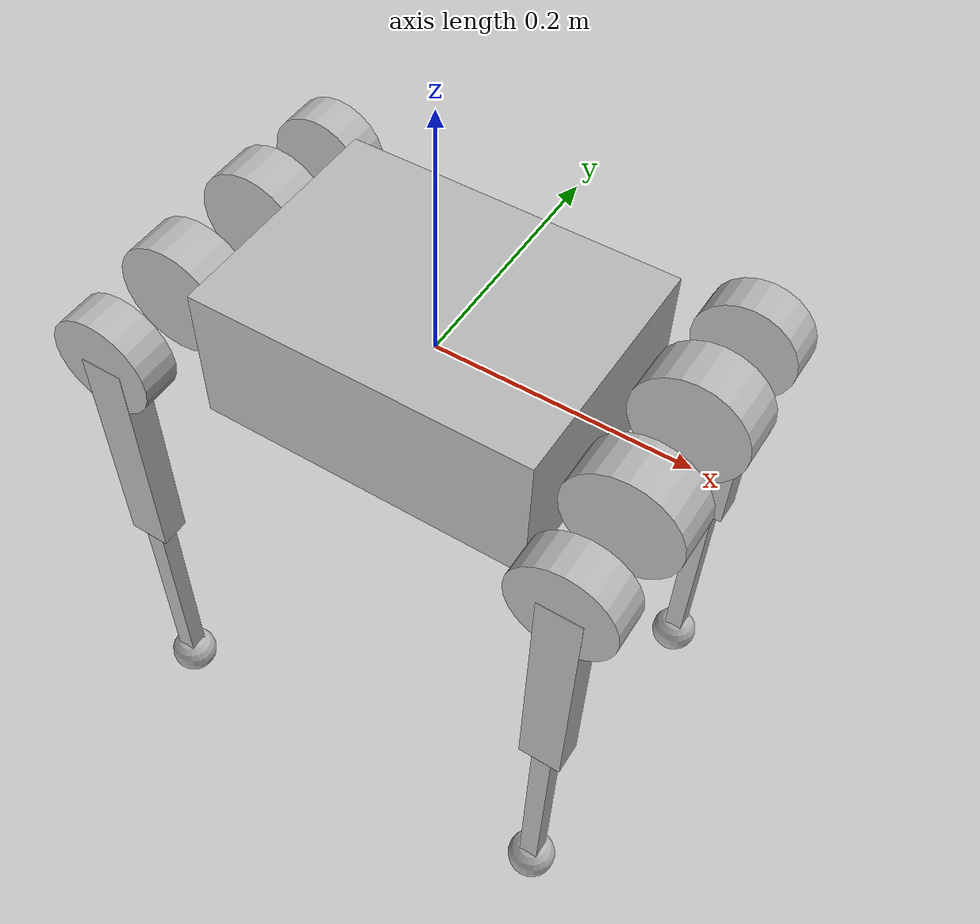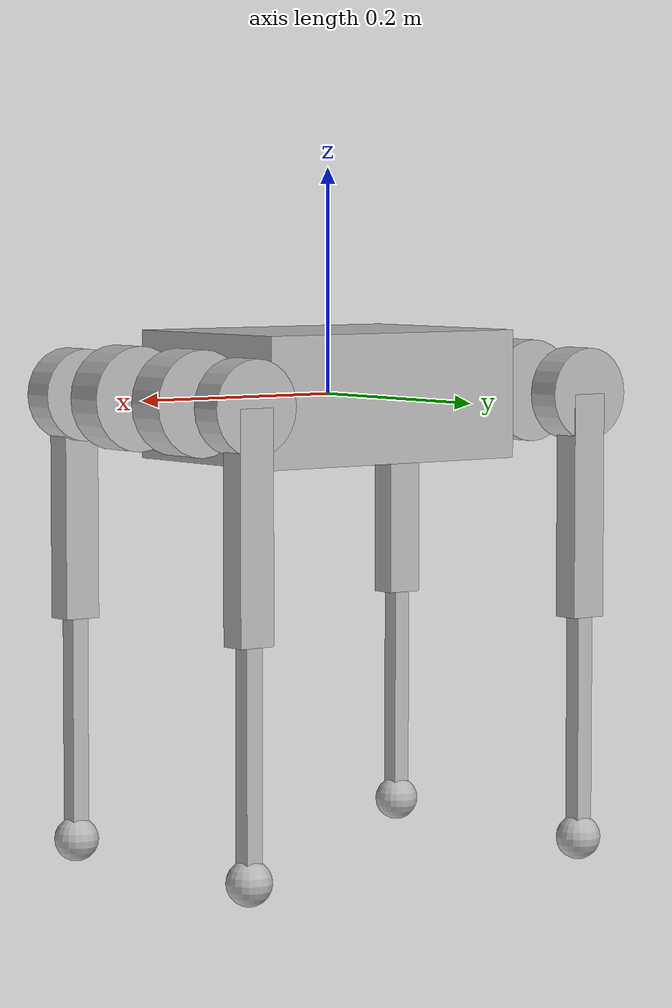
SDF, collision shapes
<sdf version='1.7'>
  <model name='a1_description'>
    <link name='trunk'>
      <inertial>
        <pose>0.012728 0.002186 0.000515 0 -0 0</pose>
        <mass>4.714</mass>
        <inertia>
          <ixx>0.0169399</ixx>
          <ixy>8.38742e-05</ixy>
          <ixz>0.000597672</ixz>
          <iyy>0.0566792</iyy>
          <iyz>2.51329e-05</iyz>
          <izz>0.0648138</izz>
        </inertia>
      </inertial>
      <collision name='trunk_collision'>
        <pose>0 0 0 0 -0 0</pose>
        <geometry>
          <box>
            <size>0.267 0.194 0.114</size>
          </box>
        </geometry>
      </collision>
      <collision name='trunk_fixed_joint_lump__imu_link_collision_1'>
        <pose>0 0 0 0 -0 0</pose>
        <geometry>
          <box>
            <size>0.001 0.001 0.001</size>
          </box>
        </geometry>
      </collision>
      <visual name='trunk_visual'>
        <pose>0 0 0 0 -0 0</pose>
        <geometry>
          <mesh>
            <scale>1 1 1</scale>
            <uri>meshes/trunk.obj</uri>
            <filename></filename>
          </mesh>
        </geometry>
      </visual>
      <visual name='trunk_fixed_joint_lump__imu_link_visual_1'>
        <pose>0 0 0 0 -0 0</pose>
        <geometry>
          <box>
            <size>0.001 0.001 0.001</size>
          </box>
        </geometry>
      </visual>
    </link>
    <joint name='FL_hip_joint' type='revolute'>
      <pose relative_to='trunk'>0.183 0.047 0 0 -0 0</pose>
      <parent>trunk</parent>
      <child>FL_hip</child>
      <axis>
        <xyz>1 0 0</xyz>
        <limit>
          <lower>-0.802851</lower>
          <upper>0.802851</upper>
          <effort>20</effort>
          <velocity>52.4</velocity>
        </limit>
        <dynamics>
          <damping>0</damping>
          <friction>0</friction>
          <spring_reference>0</spring_reference>
          <spring_stiffness>0</spring_stiffness>
        </dynamics>
      </axis>
    </joint>
    <link name='FL_hip'>
      <pose relative_to='FL_hip_joint'>0 0 0 0 -0 0</pose>
      <inertial>
        <pose>-0.003306 0.00075 3.1e-05 0 -0 0</pose>
        <mass>0.697</mass>
        <inertia>
          <ixx>0.000575695</ixx>
          <ixy>-9.67471e-06</ixy>
          <ixz>-3.41898e-07</ixz>
          <iyy>0.000907501</iyy>
          <iyz>-4.63512e-07</iyz>
          <izz>0.000659389</izz>
        </inertia>
      </inertial>
      <collision name='FL_hip_collision'>
        <pose>0 0 0 1.5708 -0 0</pose>
        <geometry>
          <cylinder>
            <length>0.04</length>
            <radius>0.046</radius>
          </cylinder>
        </geometry>
      </collision>
      <collision name='FL_hip_fixed_joint_lump__FL_upper_shoulder_collision_1'>
        <pose>0 0.081 0 1.5708 -0 0</pose>
        <geometry>
          <cylinder>
            <length>0.032</length>
            <radius>0.041</radius>
          </cylinder>
        </geometry>
      </collision>
      <visual name='FL_hip_visual'>
        <pose>0 0 0 0 -0 0</pose>
        <geometry>
          <mesh>
            <scale>1 1 1</scale>
            <uri>meshes/hip.obj</uri>
            <filename></filename>
          </mesh>
        </geometry>
      </visual>
    </link>
    <joint name='FL_upper_joint' type='revolute'>
      <pose relative_to='FL_hip'>0 0.08505 0 0 -0 0</pose>
      <parent>FL_hip</parent>
      <child>FL_upper</child>
      <axis>
        <xyz>0 1 0</xyz>
        <limit>
          <lower>-1.0472</lower>
          <upper>4.18879</upper>
          <effort>55</effort>
          <velocity>28.6</velocity>
        </limit>
        <dynamics>
          <damping>0</damping>
          <friction>0</friction>
          <spring_reference>0</spring_reference>
          <spring_stiffness>0</spring_stiffness>
        </dynamics>
      </axis>
    </joint>
    <link name='FL_upper'>
      <pose relative_to='FL_upper_joint'>0 0 0 0 -0 0</pose>
      <inertial>
        <pose>-0.003237 -0.022327 -0.027326 0 -0 0</pose>
        <mass>1.013</mass>
        <inertia>
          <ixx>0.00552906</ixx>
          <ixy>4.825e-06</ixy>
          <ixz>0.000343869</ixz>
          <iyy>0.00513934</iyy>
          <iyz>2.2448e-05</iyz>
          <izz>0.00136779</izz>
        </inertia>
      </inertial>
      <collision name='FL_upper_collision'>
        <pose>0 0 -0.1 0 1.5708 0</pose>
        <geometry>
          <box>
            <size>0.2 0.0245 0.034</size>
          </box>
        </geometry>
      </collision>
      <visual name='FL_upper_visual'>
        <pose>0 0 0 0 -0 0</pose>
        <geometry>
          <mesh>
            <scale>1 1 1</scale>
            <uri>meshes/thigh.obj</uri>
            <filename></filename>
          </mesh>
        </geometry>
      </visual>
    </link>
    <joint name='FL_lower_joint' type='revolute'>
      <pose relative_to='FL_upper'>0 0 -0.2 0 -0 0</pose>
      <parent>FL_upper</parent>
      <child>FL_lower</child>
      <axis>
        <xyz>0 1 0</xyz>
        <limit>
          <lower>-2.69653</lower>
          <upper>-0.916298</upper>
          <effort>55</effort>
          <velocity>28.6</velocity>
        </limit>
        <dynamics>
          <damping>0</damping>
          <friction>0</friction>
          <spring_reference>0</spring_reference>
          <spring_stiffness>0</spring_stiffness>
        </dynamics>
      </axis>
    </joint>
    <link name='FL_lower'>
      <pose relative_to='FL_lower_joint'>0 0 0 0 -0 0</pose>
      <inertial>
        <pose>0.004727 0 -0.131975 0 -0 0</pose>
        <mass>0.226</mass>
        <inertia>
          <ixx>0.00338557</ixx>
          <ixy>0</ixy>
          <ixz>-0.000167427</ixz>
          <iyy>0.00340344</iyy>
          <iyz>0</iyz>
          <izz>4.38509e-05</izz>
        </inertia>
      </inertial>
      <collision name='FL_lower_collision'>
        <pose>0 0 -0.1 0 1.5708 0</pose>
        <geometry>
          <box>
            <size>0.2 0.016 0.016</size>
          </box>
        </geometry>
      </collision>
      <collision name='FL_lower_fixed_joint_lump__FL_toe_collision_1'>
        <pose>0 0 -0.2 0 -0 0</pose>
        <geometry>
          <sphere>
            <radius>0.02</radius>
          </sphere>
        </geometry>
      </collision>
      <visual name='FL_lower_visual'>
        <pose>0 0 0 0 -0 0</pose>
        <geometry>
          <mesh>
            <scale>1 1 1</scale>
            <uri>meshes/calf.obj</uri>
            <filename></filename>
          </mesh>
        </geometry>
      </visual>
      <visual name='FL_lower_fixed_joint_lump__FL_toe_visual_1'>
        <pose>0 0 -0.2 0 -0 0</pose>
        <geometry>
          <sphere>
            <radius>0.01</radius>
          </sphere>
        </geometry>
      </visual>
    </link>
    <joint name='FR_hip_joint' type='revolute'>
      <pose relative_to='trunk'>0.183 -0.047 0 0 -0 0</pose>
      <parent>trunk</parent>
      <child>FR_hip</child>
      <axis>
        <xyz>1 0 0</xyz>
        <limit>
          <lower>-0.802851</lower>
          <upper>0.802851</upper>
          <effort>20</effort>
          <velocity>52.4</velocity>
        </limit>
        <dynamics>
          <damping>0</damping>
          <friction>0</friction>
          <spring_reference>0</spring_reference>
          <spring_stiffness>0</spring_stiffness>
        </dynamics>
      </axis>
    </joint>
    <link name='FR_hip'>
      <pose relative_to='FR_hip_joint'>0 0 0 0 -0 0</pose>
      <inertial>
        <pose>-0.003306 -0.00075 3.1e-05 0 -0 0</pose>
        <mass>0.697</mass>
        <inertia>
          <ixx>0.000575695</ixx>
          <ixy>9.67471e-06</ixy>
          <ixz>-3.41898e-07</ixz>
          <iyy>0.000907501</iyy>
          <iyz>4.63512e-07</iyz>
          <izz>0.000659389</izz>
        </inertia>
      </inertial>
      <collision name='FR_hip_collision'>
        <pose>0 0 0 1.5708 -0 0</pose>
        <geometry>
          <cylinder>
            <length>0.04</length>
            <radius>0.046</radius>
          </cylinder>
        </geometry>
      </collision>
      <collision name='FR_hip_fixed_joint_lump__FR_upper_shoulder_collision_1'>
        <pose>0 -0.081 0 1.5708 -0 0</pose>
        <geometry>
          <cylinder>
            <length>0.032</length>
            <radius>0.041</radius>
          </cylinder>
        </geometry>
      </collision>
      <visual name='FR_hip_visual'>
        <pose>0 0 0 -3.14159 0 0</pose>
        <geometry>
          <mesh>
            <scale>1 1 1</scale>
            <uri>meshes/hip.obj</uri>
            <filename></filename>
          </mesh>
        </geometry>
      </visual>
    </link>
    <joint name='FR_upper_joint' type='revolute'>
      <pose relative_to='FR_hip'>0 -0.08505 0 0 -0 0</pose>
      <parent>FR_hip</parent>
      <child>FR_upper</child>
      <axis>
        <xyz>0 1 0</xyz>
        <limit>
          <lower>-1.0472</lower>
          <upper>4.18879</upper>
          <effort>55</effort>
          <velocity>28.6</velocity>
        </limit>
        <dynamics>
          <damping>0</damping>
          <friction>0</friction>
          <spring_reference>0</spring_reference>
          <spring_stiffness>0</spring_stiffness>
        </dynamics>
      </axis>
    </joint>
    <link name='FR_upper'>
      <pose relative_to='FR_upper_joint'>0 0 0 0 -0 0</pose>
      <inertial>
        <pose>-0.003237 0.022327 -0.027326 0 -0 0</pose>
        <mass>1.013</mass>
        <inertia>
          <ixx>0.00552906</ixx>
          <ixy>-4.825e-06</ixy>
          <ixz>0.000343869</ixz>
          <iyy>0.00513934</iyy>
          <iyz>-2.2448e-05</iyz>
          <izz>0.00136779</izz>
        </inertia>
      </inertial>
      <collision name='FR_upper_collision'>
        <pose>0 0 -0.1 0 1.5708 0</pose>
        <geometry>
          <box>
            <size>0.2 0.0245 0.034</size>
          </box>
        </geometry>
      </collision>
      <visual name='FR_upper_visual'>
        <pose>0 0 0 0 -0 0</pose>
        <geometry>
          <mesh>
            <scale>1 1 1</scale>
            <uri>meshes/thigh_mirror.obj</uri>
            <filename></filename>
          </mesh>
        </geometry>
      </visual>
    </link>
    <joint name='FR_lower_joint' type='revolute'>
      <pose relative_to='FR_upper'>0 0 -0.2 0 -0 0</pose>
      <parent>FR_upper</parent>
      <child>FR_lower</child>
      <axis>
        <xyz>0 1 0</xyz>
        <limit>
          <lower>-2.69653</lower>
          <upper>-0.916298</upper>
          <effort>55</effort>
          <velocity>28.6</velocity>
        </limit>
        <dynamics>
          <damping>0</damping>
          <friction>0</friction>
          <spring_reference>0</spring_reference>
          <spring_stiffness>0</spring_stiffness>
        </dynamics>
      </axis>
    </joint>
    <link name='FR_lower'>
      <pose relative_to='FR_lower_joint'>0 0 0 0 -0 0</pose>
      <inertial>
        <pose>0.004727 0 -0.131975 0 -0 0</pose>
        <mass>0.226</mass>
        <inertia>
          <ixx>0.00338557</ixx>
          <ixy>0</ixy>
          <ixz>-0.000167427</ixz>
          <iyy>0.00340344</iyy>
          <iyz>0</iyz>
          <izz>4.38509e-05</izz>
        </inertia>
      </inertial>
      <collision name='FR_lower_collision'>
        <pose>0 0 -0.1 0 1.5708 0</pose>
        <geometry>
          <box>
            <size>0.2 0.016 0.016</size>
          </box>
        </geometry>
      </collision>
      <collision name='FR_lower_fixed_joint_lump__FR_toe_collision_1'>
        <pose>0 0 -0.2 0 -0 0</pose>
        <geometry>
          <sphere>
            <radius>0.02</radius>
          </sphere>
        </geometry>
      </collision>
      <visual name='FR_lower_visual'>
        <pose>0 0 0 0 -0 0</pose>
        <geometry>
          <mesh>
            <scale>1 1 1</scale>
            <uri>meshes/calf.obj</uri>
            <filename></filename>
          </mesh>
        </geometry>
      </visual>
      <visual name='FR_lower_fixed_joint_lump__FR_toe_visual_1'>
        <pose>0 0 -0.2 0 -0 0</pose>
        <geometry>
          <sphere>
            <radius>0.01</radius>
          </sphere>
        </geometry>
      </visual>
    </link>
    <joint name='RL_hip_joint' type='revolute'>
      <pose relative_to='trunk'>-0.183 0.047 0 0 -0 0</pose>
      <parent>trunk</parent>
      <child>RL_hip</child>
      <axis>
        <xyz>1 0 0</xyz>
        <limit>
          <lower>-0.802851</lower>
          <upper>0.802851</upper>
          <effort>20</effort>
          <velocity>52.4</velocity>
        </limit>
        <dynamics>
          <damping>0</damping>
          <friction>0</friction>
          <spring_reference>0</spring_reference>
          <spring_stiffness>0</spring_stiffness>
        </dynamics>
      </axis>
    </joint>
    <link name='RL_hip'>
      <pose relative_to='RL_hip_joint'>0 0 0 0 -0 0</pose>
      <inertial>
        <pose>0.003306 0.00075 3.1e-05 0 -0 0</pose>
        <mass>0.697</mass>
        <inertia>
          <ixx>0.000575695</ixx>
          <ixy>9.67471e-06</ixy>
          <ixz>3.41898e-07</ixz>
          <iyy>0.000907501</iyy>
          <iyz>-4.63512e-07</iyz>
          <izz>0.000659389</izz>
        </inertia>
      </inertial>
      <collision name='RL_hip_collision'>
        <pose>0 0 0 1.5708 -0 0</pose>
        <geometry>
          <cylinder>
            <length>0.04</length>
            <radius>0.046</radius>
          </cylinder>
        </geometry>
      </collision>
      <collision name='RL_hip_fixed_joint_lump__RL_upper_shoulder_collision_1'>
        <pose>0 0.081 0 1.5708 -0 0</pose>
        <geometry>
          <cylinder>
            <length>0.032</length>
            <radius>0.041</radius>
          </cylinder>
        </geometry>
      </collision>
      <visual name='RL_hip_visual'>
        <pose>0 0 0 3.14159 -0 3.14159</pose>
        <geometry>
          <mesh>
            <scale>1 1 1</scale>
            <uri>meshes/hip.obj</uri>
            <filename></filename>
          </mesh>
        </geometry>
      </visual>
    </link>
    <joint name='RL_upper_joint' type='revolute'>
      <pose relative_to='RL_hip'>0 0.08505 0 0 -0 0</pose>
      <parent>RL_hip</parent>
      <child>RL_upper</child>
      <axis>
        <xyz>0 1 0</xyz>
        <limit>
          <lower>-1.0472</lower>
          <upper>4.18879</upper>
          <effort>55</effort>
          <velocity>28.6</velocity>
        </limit>
        <dynamics>
          <damping>0</damping>
          <friction>0</friction>
          <spring_reference>0</spring_reference>
          <spring_stiffness>0</spring_stiffness>
        </dynamics>
      </axis>
    </joint>
    <link name='RL_upper'>
      <pose relative_to='RL_upper_joint'>0 0 0 0 -0 0</pose>
      <inertial>
        <pose>-0.003237 -0.022327 -0.027326 0 -0 0</pose>
        <mass>1.013</mass>
        <inertia>
          <ixx>0.00552906</ixx>
          <ixy>4.825e-06</ixy>
          <ixz>0.000343869</ixz>
          <iyy>0.00513934</iyy>
          <iyz>2.2448e-05</iyz>
          <izz>0.00136779</izz>
        </inertia>
      </inertial>
      <collision name='RL_upper_collision'>
        <pose>0 0 -0.1 0 1.5708 0</pose>
        <geometry>
          <box>
            <size>0.2 0.0245 0.034</size>
          </box>
        </geometry>
      </collision>
      <visual name='RL_upper_visual'>
        <pose>0 0 0 0 -0 0</pose>
        <geometry>
          <mesh>
            <scale>1 1 1</scale>
            <uri>meshes/thigh.obj</uri>
            <filename></filename>
          </mesh>
        </geometry>
      </visual>
    </link>
    <joint name='RL_lower_joint' type='revolute'>
      <pose relative_to='RL_upper'>0 0 -0.2 0 -0 0</pose>
      <parent>RL_upper</parent>
      <child>RL_lower</child>
      <axis>
        <xyz>0 1 0</xyz>
        <limit>
          <lower>-2.69653</lower>
          <upper>-0.916298</upper>
          <effort>55</effort>
          <velocity>28.6</velocity>
        </limit>
        <dynamics>
          <damping>0</damping>
          <friction>0</friction>
          <spring_reference>0</spring_reference>
          <spring_stiffness>0</spring_stiffness>
        </dynamics>
      </axis>
    </joint>
    <link name='RL_lower'>
      <pose relative_to='RL_lower_joint'>0 0 0 0 -0 0</pose>
      <inertial>
        <pose>0.004727 0 -0.131975 0 -0 0</pose>
        <mass>0.226</mass>
        <inertia>
          <ixx>0.00338557</ixx>
          <ixy>0</ixy>
          <ixz>-0.000167427</ixz>
          <iyy>0.00340344</iyy>
          <iyz>0</iyz>
          <izz>4.38509e-05</izz>
        </inertia>
      </inertial>
      <collision name='RL_lower_collision'>
        <pose>0 0 -0.1 0 1.5708 0</pose>
        <geometry>
          <box>
            <size>0.2 0.016 0.016</size>
          </box>
        </geometry>
      </collision>
      <collision name='RL_lower_fixed_joint_lump__RL_toe_collision_1'>
        <pose>0 0 -0.2 0 -0 0</pose>
        <geometry>
          <sphere>
            <radius>0.02</radius>
          </sphere>
        </geometry>
      </collision>
      <visual name='RL_lower_visual'>
        <pose>0 0 0 0 -0 0</pose>
        <geometry>
          <mesh>
            <scale>1 1 1</scale>
            <uri>meshes/calf.obj</uri>
            <filename></filename>
          </mesh>
        </geometry>
      </visual>
      <visual name='RL_lower_fixed_joint_lump__RL_toe_visual_1'>
        <pose>0 0 -0.2 0 -0 0</pose>
        <geometry>
          <sphere>
            <radius>0.01</radius>
          </sphere>
        </geometry>
      </visual>
    </link>
    <joint name='RR_hip_joint' type='revolute'>
      <pose relative_to='trunk'>-0.183 -0.047 0 0 -0 0</pose>
      <parent>trunk</parent>
      <child>RR_hip</child>
      <axis>
        <xyz>1 0 0</xyz>
        <limit>
          <lower>-0.802851</lower>
          <upper>0.802851</upper>
          <effort>20</effort>
          <velocity>52.4</velocity>
        </limit>
        <dynamics>
          <damping>0</damping>
          <friction>0</friction>
          <spring_reference>0</spring_reference>
          <spring_stiffness>0</spring_stiffness>
        </dynamics>
      </axis>
    </joint>
    <link name='RR_hip'>
      <pose relative_to='RR_hip_joint'>0 0 0 0 -0 0</pose>
      <inertial>
        <pose>0.003306 -0.00075 3.1e-05 0 -0 0</pose>
        <mass>0.697</mass>
        <inertia>
          <ixx>0.000575695</ixx>
          <ixy>-9.67471e-06</ixy>
          <ixz>3.41898e-07</ixz>
          <iyy>0.000907501</iyy>
          <iyz>4.63512e-07</iyz>
          <izz>0.000659389</izz>
        </inertia>
      </inertial>
      <collision name='RR_hip_collision'>
        <pose>0 0 0 1.5708 -0 0</pose>
        <geometry>
          <cylinder>
            <length>0.04</length>
            <radius>0.046</radius>
          </cylinder>
        </geometry>
      </collision>
      <collision name='RR_hip_fixed_joint_lump__RR_upper_shoulder_collision_1'>
        <pose>0 -0.081 0 1.5708 -0 0</pose>
        <geometry>
          <cylinder>
            <length>0.032</length>
            <radius>0.041</radius>
          </cylinder>
        </geometry>
      </collision>
      <visual name='RR_hip_visual'>
        <pose>0 0 0 0 -0 3.14159</pose>
        <geometry>
          <mesh>
            <scale>1 1 1</scale>
            <uri>meshes/hip.obj</uri>
            <filename></filename>
          </mesh>
        </geometry>
      </visual>
    </link>
    <joint name='RR_upper_joint' type='revolute'>
      <pose relative_to='RR_hip'>0 -0.08505 0 0 -0 0</pose>
      <parent>RR_hip</parent>
      <child>RR_upper</child>
      <axis>
        <xyz>0 1 0</xyz>
        <limit>
          <lower>-1.0472</lower>
          <upper>4.18879</upper>
          <effort>55</effort>
          <velocity>28.6</velocity>
        </limit>
        <dynamics>
          <damping>0</damping>
          <friction>0</friction>
          <spring_reference>0</spring_reference>
          <spring_stiffness>0</spring_stiffness>
        </dynamics>
      </axis>
    </joint>
    <link name='RR_upper'>
      <pose relative_to='RR_upper_joint'>0 0 0 0 -0 0</pose>
      <inertial>
        <pose>-0.003237 0.022327 -0.027326 0 -0 0</pose>
        <mass>1.013</mass>
        <inertia>
          <ixx>0.00552906</ixx>
          <ixy>-4.825e-06</ixy>
          <ixz>0.000343869</ixz>
          <iyy>0.00513934</iyy>
          <iyz>-2.2448e-05</iyz>
          <izz>0.00136779</izz>
        </inertia>
      </inertial>
      <collision name='RR_upper_collision'>
        <pose>0 0 -0.1 0 1.5708 0</pose>
        <geometry>
          <box>
            <size>0.2 0.0245 0.034</size>
          </box>
        </geometry>
      </collision>
      <visual name='RR_upper_visual'>
        <pose>0 0 0 0 -0 0</pose>
        <geometry>
          <mesh>
            <scale>1 1 1</scale>
            <uri>meshes/thigh_mirror.obj</uri>
            <filename></filename>
          </mesh>
        </geometry>
      </visual>
    </link>
    <joint name='RR_lower_joint' type='revolute'>
      <pose relative_to='RR_upper'>0 0 -0.2 0 -0 0</pose>
      <parent>RR_upper</parent>
      <child>RR_lower</child>
      <axis>
        <xyz>0 1 0</xyz>
        <limit>
          <lower>-2.69653</lower>
          <upper>-0.916298</upper>
          <effort>55</effort>
          <velocity>28.6</velocity>
        </limit>
        <dynamics>
          <damping>0</damping>
          <friction>0</friction>
          <spring_reference>0</spring_reference>
          <spring_stiffness>0</spring_stiffness>
        </dynamics>
      </axis>
    </joint>
    <link name='RR_lower'>
      <pose relative_to='RR_lower_joint'>0 0 0 0 -0 0</pose>
      <inertial>
        <pose>0.004727 0 -0.131975 0 -0 0</pose>
        <mass>0.226</mass>
        <inertia>
          <ixx>0.00338557</ixx>
          <ixy>0</ixy>
          <ixz>-0.000167427</ixz>
          <iyy>0.00340344</iyy>
          <iyz>0</iyz>
          <izz>4.38509e-05</izz>
        </inertia>
      </inertial>
      <collision name='RR_lower_collision'>
        <pose>0 0 -0.1 0 1.5708 0</pose>
        <geometry>
          <box>
            <size>0.2 0.016 0.016</size>
          </box>
        </geometry>
      </collision>
      <collision name='RR_lower_fixed_joint_lump__RR_toe_collision_1'>
        <pose>0 0 -0.2 0 -0 0</pose>
        <geometry>
          <sphere>
            <radius>0.02</radius>
          </sphere>
        </geometry>
      </collision>
      <visual name='RR_lower_visual'>
        <pose>0 0 0 0 -0 0</pose>
        <geometry>
          <mesh>
            <scale>1 1 1</scale>
            <uri>meshes/calf.obj</uri>
            <filename></filename>
          </mesh>
        </geometry>
      </visual>
      <visual name='RR_lower_fixed_joint_lump__RR_toe_visual_1'>
        <pose>0 0 -0.2 0 -0 0</pose>
        <geometry>
          <sphere>
            <radius>0.01</radius>
          </sphere>
        </geometry>
      </visual>
    </link>
  </model>
</sdf>
